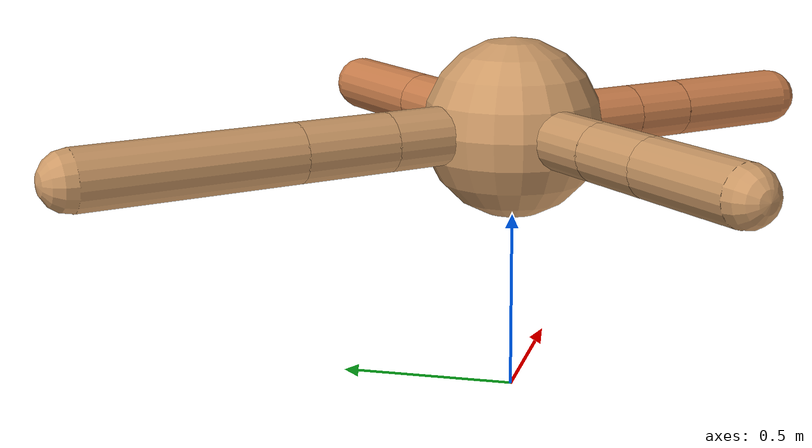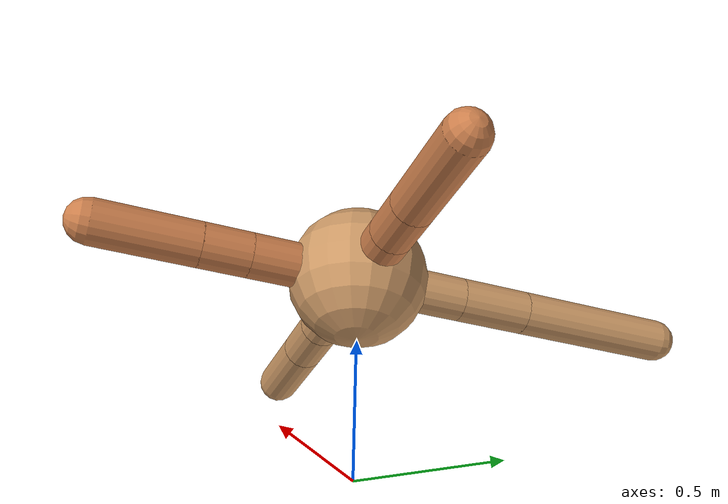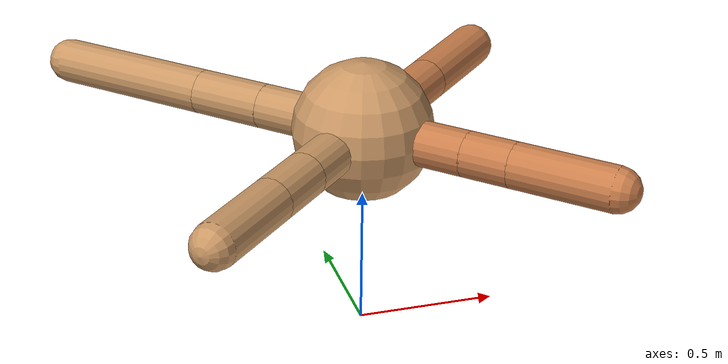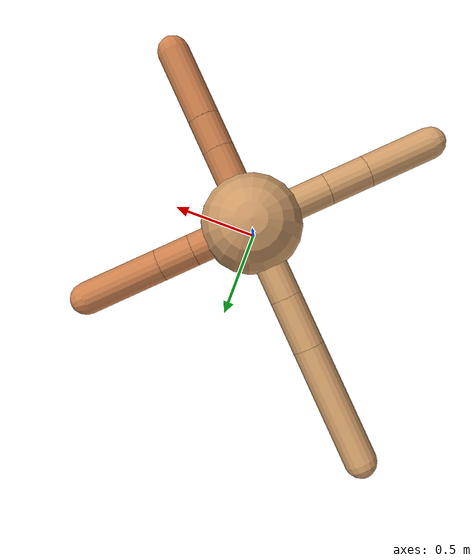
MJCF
<mujoco model="ant">
  <compiler angle="degree" coordinate="local" inertiafromgeom="true" />
  <option integrator="RK4" timestep="0.01" />
  <custom>
    <numeric data="0.0 0.0 0.55 1.0 0.0 0.0 0.0 0.0 1.0 0.0 -1.0 0.0 -1.0 0.0 1.0" name="init_qpos" />
  </custom>
  <default>
    <joint armature="1" damping="1" limited="true" />
    <geom conaffinity="0" condim="3" density="5.0" friction="1.5 0.1 0.1" margin="0.01" rgba="0.8 0.6 0.4 1" />
  </default>
  <worldbody>
    <body name="torso" pos="0 0 0.75">
      <geom name="torso_geom" pos="0 0 0" size="0.25" type="sphere" />

      <body name="front_left_leg" pos="0 0 0">
        <geom fromto="0.0 0.0 0.0 0.22103485749158625 0.22103485749158625 0.0" name="aux_1_geom" size="0.08" type="capsule" rgba=".8 .5 .3 1" />
        <body name="aux_1" pos="0.22103485749158625 0.22103485749158625 0.0">
          <joint axis="0 0 1" name="hip_1" pos="0.0 0.0 0.0" range="-40 40" type="hinge" />
          <geom fromto="0.0 0.0 0.0 0.12349109840918766 0.12349109840918766 0.0" name="left_leg_geom" size="0.08" type="capsule" rgba=".8 .5 .3 1" />
          <body pos="0.12349109840918766 0.12349109840918766 0.0" name="front_left_foot">
            <joint axis="-1 1 0" name="ankle_1" pos="0.0 0.0 0.0" range="30 100" type="hinge" />
            <geom fromto="0.0 0.0 0.0 0.27401162970036586 0.27401162970036586 0.0" name="left_ankle_geom" size="0.08" type="capsule" rgba=".8 .5 .3 1" />
          </body>
        </body>
      </body>
      <body name="front_right_leg" pos="0 0 0">
        <geom fromto="0.0 0.0 0.0 -0.28034575660911065 0.28034575660911065 0.0" name="aux_2_geom" size="0.08" type="capsule" />
        <body name="aux_2" pos="-0.28034575660911065 0.28034575660911065 0.0">
          <joint axis="0 0 1" name="hip_2" pos="0.0 0.0 0.0" range="-40 40" type="hinge" />
          <geom fromto="0.0 0.0 0.0 -0.18447551114053332 0.18447551114053332 0.0" name="right_leg_geom" size="0.08" type="capsule" />
          <body pos="-0.18447551114053332 0.18447551114053332 0.0" name="front_right_foot">
            <joint axis="1 1 0" name="ankle_2" pos="0.0 0.0 0.0" range="-100 -30" type="hinge" />
            <geom fromto="0.0 0.0 0.0 -0.4180937825185333 0.4180937825185333 0.0" name="right_ankle_geom" size="0.08" type="capsule" />
          </body>
        </body>
      </body>
      <body name="left_back_leg" pos="0 0 0">
        <geom fromto="0.0 0.0 0.0 -0.2849863889719651 -0.2849863889719651 0.0" name="aux_3_geom" size="0.08" type="capsule" />
        <body name="aux_3" pos="-0.2849863889719651 -0.2849863889719651 0.0">
          <joint axis="0 0 1" name="hip_3" pos="0.0 0.0 0.0" range="-40 40" type="hinge" />
          <geom fromto="0.0 0.0 0.0 -0.1491809239702762 -0.1491809239702762 0.0" name="back_leg_geom" size="0.08" type="capsule" />
          <body pos="-0.1491809239702762 -0.1491809239702762 0.0" name="left_back_foot">
            <joint axis="-1 1 0" name="ankle_3" pos="0.0 0.0 0.0" range="-100 -30" type="hinge" />
            <geom fromto="0.0 0.0 0.0 -0.24072937206845066 -0.24072937206845066 0.0" name="third_ankle_geom" size="0.08" type="capsule" />
          </body>
        </body>
      </body>
      <body name="right_back_leg" pos="0 0 0">
        <geom fromto="0.0 0.0 0.0 0.28066913166938384 -0.28066913166938384 0.0" name="aux_4_geom" size="0.08" type="capsule" rgba=".8 .5 .3 1" />
        <body name="aux_4" pos="0.28066913166938384 -0.28066913166938384 0.0">
          <joint axis="0 0 1" name="hip_4" pos="0.0 0.0 0.0" range="-40 40" type="hinge" />
          <geom fromto="0.0 0.0 0.0 0.1216161597307529 -0.1216161597307529 0.0" name="rightback_leg_geom" size="0.08" type="capsule" rgba=".8 .5 .3 1" />
          <body pos="0.1216161597307529 -0.1216161597307529 0.0" name="right_back_foot">
            <joint axis="1 1 0" name="ankle_4" pos="0.0 0.0 0.0" range="30 100" type="hinge" />
            <geom fromto="0.0 0.0 0.0 0.2578946202170831 -0.2578946202170831 0.0" name="fourth_ankle_geom" size="0.08" type="capsule" rgba=".8 .5 .3 1" />
          </body>
        </body>
      </body>
    </body>
  </worldbody>
  <actuator>
    <motor ctrllimited="true" ctrlrange="-1.0 1.0" joint="hip_4" gear="150" />
    <motor ctrllimited="true" ctrlrange="-1.0 1.0" joint="ankle_4" gear="150" />
    <motor ctrllimited="true" ctrlrange="-1.0 1.0" joint="hip_1" gear="150" />
    <motor ctrllimited="true" ctrlrange="-1.0 1.0" joint="ankle_1" gear="150" />
    <motor ctrllimited="true" ctrlrange="-1.0 1.0" joint="hip_2" gear="150" />
    <motor ctrllimited="true" ctrlrange="-1.0 1.0" joint="ankle_2" gear="150" />
    <motor ctrllimited="true" ctrlrange="-1.0 1.0" joint="hip_3" gear="150" />
    <motor ctrllimited="true" ctrlrange="-1.0 1.0" joint="ankle_3" gear="150" />
  </actuator>
</mujoco>
